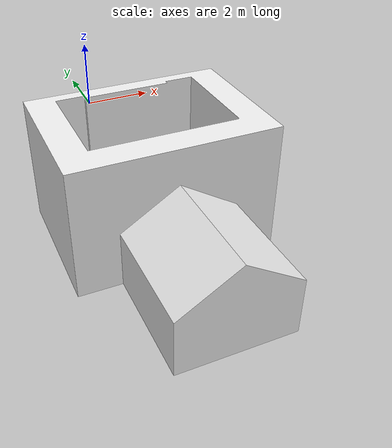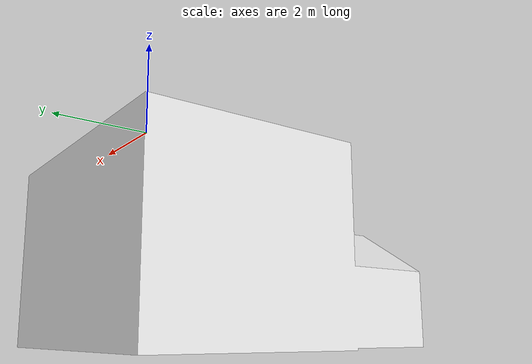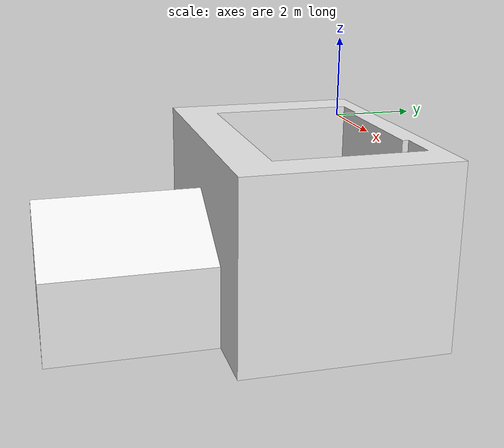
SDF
<?xml version="1.0" ?>
<sdf version="1.6">
  <model name="Wall">
  <static>true</static>
  <pose>0 0 0 1.57 0 3.14</pose>
    <link name="Wall">
      <pose>0 0 0 0 0 0</pose>
      <visual name="Wall_visual">
        <geometry><mesh><uri>model://Wall/meshes/Wall.stl</uri></mesh></geometry>
        <material>
          <script>
            <uri>file://media/materials/scripts/gazebo.material</uri>
            <name>Gazebo/White</name>
          </script>
        </material>
      </visual>
      <collision name="Wall_collision">
        <geometry><mesh><uri>model://Wall/meshes/Wall.stl</uri></mesh></geometry>
      </collision>
    </link>

  </model>
</sdf>
